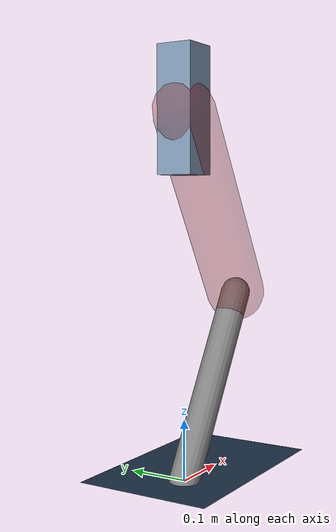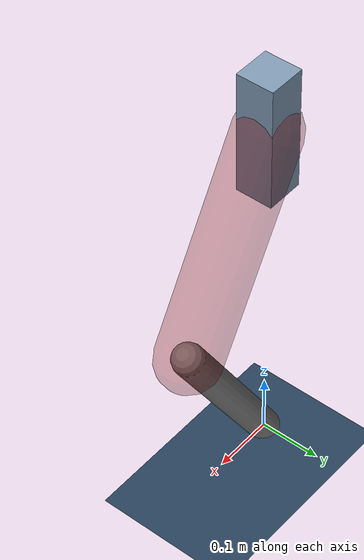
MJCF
<mujoco model="Hopper2D">
	<compiler inertiafromgeom="true" angle="radian" />
	<option timestep="0.001" integrator="implicit" cone="elliptic" solver="Newton" tolerance="1e-10" />

	<default>
		<geom contype="1" conaffinity="1" condim="3" friction="2 0.005 0.0001" solref="0.005 1" />
		<joint limited="true" damping="0.1" />
	</default>

	<asset>
		<texture name="skybox" type="skybox" builtin="gradient" rgb1=".4 .6 .8" rgb2="0 0 0" width="800" height="800" />
		<texture name="grid" type="2d" builtin="checker" rgb1=".1 .2 .3" rgb2=".2 .3 .4" width="300" height="300" mark="edge" markrgb=".2 .3 .4" />
		<material name="ground" texture="grid" texrepeat="1 1" texuniform="true" reflectance="0.1" />
		<material name="leg" rgba="0.5 0.6 0.7 1" />
	</asset>

	<worldbody>

		<geom name="floor" type="plane" size="5 5 0.25" material="ground" />

		<light directional="false" diffuse="0.8 0.8 0.8" specular="0.3 0.3 0.3" pos="0 0 2" dir="0 0 -1" />
		<light mode="targetbodycom" target="base" directional="false" diffuse="0.8 0.8 0.8" specular="0.3 0.3 0.3" pos="0 0 2" dir="0 0 -1" />

		<camera name="fixed" pos="0 -2 1" xyaxes="1 0 0 0 0 1" />
		<camera name="tracking" mode="trackcom" pos="0 -3 1" />

		<body name="root" pos="0 0 0.5909151686357885">
			<joint name="slide_x" type="slide" axis="1 0 0" range="-100 100" />
			<joint name="slide_z" type="slide" axis="0 0 1" range="0 10" />

			<body name="base" pos="0 0 0">
				<geom name="torso" type="box" size="0.03 0.03 0.1" mass="2.591" material="leg" />

				<body name="link1" pos="0 0 0" euler="0 1.0503833485663159 0">
					<joint type="hinge" axis="0 -1 0" pos="0 0 0" name="hinge1" limited="true" range="-3.14 3.14" stiffness="0" damping="0.1" />
					<geom name="thigh" type="capsule" fromto="0 0 0 0.34441452902970493 0 0" size="0.05" rgba="0.5 0 0 0.3" mass="1.1109606812831738" />

					<body name="link2" pos="0.34441452902970493 0 0" euler="0 1.0506982394900004 0">
						<joint type="hinge" axis="0 -1 0" pos="0 0 0" name="hinge2" limited="true" range="-3.14 3.14" stiffness="0" damping="0.1" />
						<geom name="shank" type="capsule" fromto="0 0 0 0.3385984943932125 0 0" size="0.025" mass="0.5147386449538912" />

					</body>
				</body>
			</body>
		</body>
	</worldbody>

	<actuator>
		<motor name="torque1" joint="hinge1" ctrlrange="-71.54412857679533 71.54412857679533" ctrllimited="true" gear="1" />
		<motor name="torque2" joint="hinge2" ctrlrange="-58.002522211707785 58.002522211707785" ctrllimited="true" gear="1" />
	</actuator>
</mujoco>
